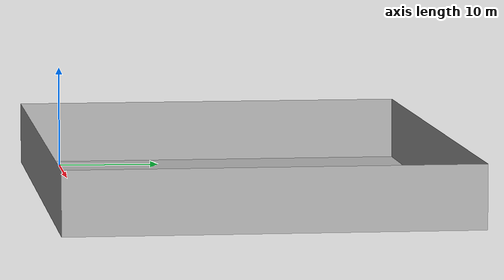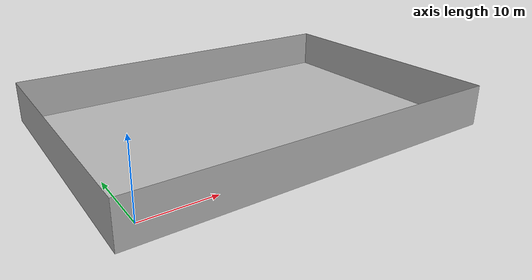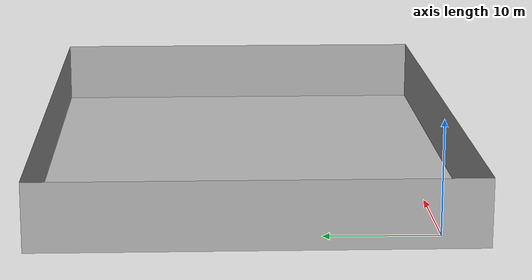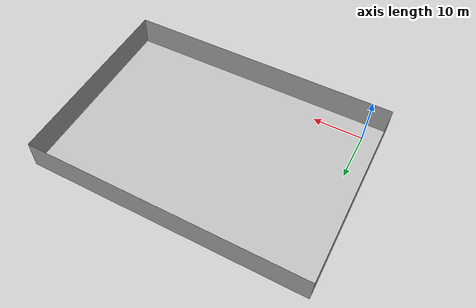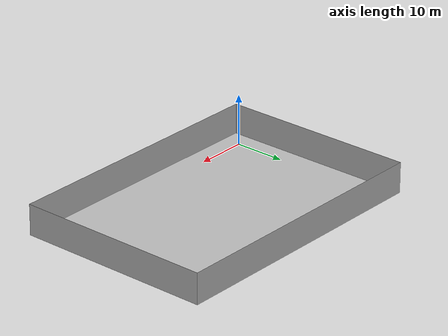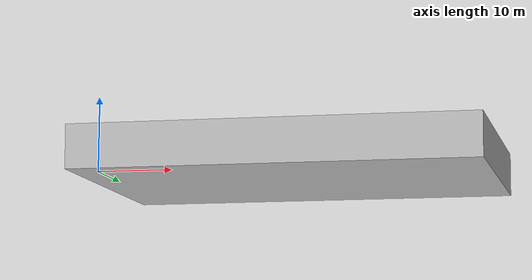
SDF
<?xml version='1.0' encoding='utf-8'?>
<sdf version="1.4">
<model name="template_model">
<link name="track">
<collision name="collision">
<pose>0 0 0 0 0 0</pose>
<geometry>
<mesh>
<uri>meshes/Trapezoid_collision.dae</uri>
<scale> 6 6 6</scale>
</mesh>
</geometry>
</collision>
<visual name="visual">
<pose>0 0 0 0 0 0</pose>
<geometry>
<mesh>
<uri>meshes/Trapezoid.dae</uri>
<scale> 6 6 6 </scale>
</mesh>
</geometry>
</visual>
</link>
<static>1</static>
</model>
</sdf>
